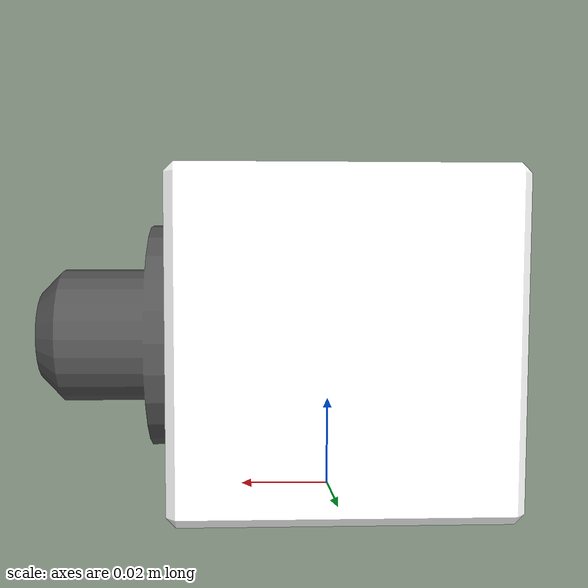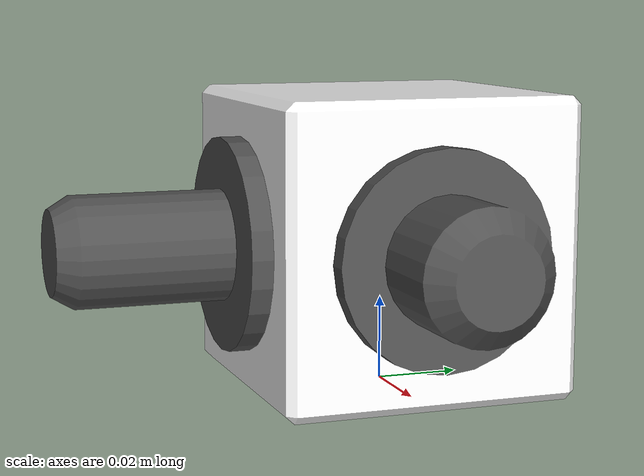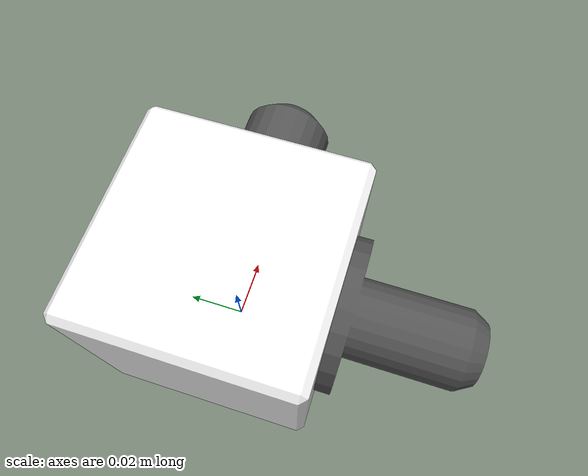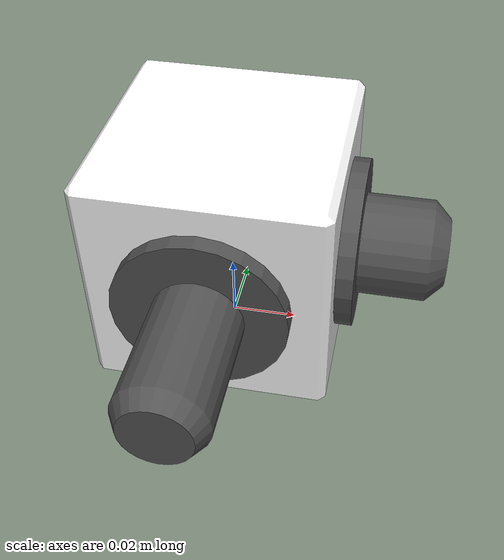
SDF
<?xml version="1.0" ?>
<sdf version="1.6">
  <model name="regulator">
    <static>false</static>
    <allow_auto_disable>false</allow_auto_disable>

    <link name="regulator_link">
      <inertial>
        <pose>0 0 0.035 0 0 0</pose>
        <mass>0.93</mass>
        <inertia>
          <ixx>0.00076</ixx>
          <ixy>0</ixy>
          <ixz>0</ixz>
          <iyy>0.00076</iyy>
          <iyz>0</iyz>
          <izz>0.00076</izz>
        </inertia>
      </inertial>

      <visual name="base">
        <geometry>
          <mesh>
            <uri>model://regulator/meshes/regulator_base.stl</uri>
          </mesh>
        </geometry>
        <material>
          <ambient>1.0 1.0 1.0 1.0</ambient>
          <diffuse>1.0 1.0 1.0 1.0</diffuse>
        </material>
      </visual>

      <visual name="short_peg">
        <geometry>
          <mesh>
            <uri>model://regulator/meshes/regulator_short_peg.stl</uri>
          </mesh>
        </geometry>
        <material>
          <ambient>0.318 0.318 0.318 1.0</ambient>
          <diffuse>0.318 0.318 0.318 1.0</diffuse>
        </material>
      </visual>

      <visual name="long_peg">
        <geometry>
          <mesh>
            <uri>model://regulator/meshes/regulator_long_peg.stl</uri>
          </mesh>
        </geometry>
        <material>
          <ambient>0.318 0.318 0.318 1.0</ambient>
          <diffuse>0.318 0.318 0.318 1.0</diffuse>
        </material>
      </visual>

      <collision name="collision">
        <geometry>
          <mesh>
            <uri>model://regulator/meshes/regulator_collision.stl</uri>
          </mesh>
        </geometry>
        <max_contacts>20</max_contacts>
        <surface>
          <contact>
            <ode>
              <max_vel>0.0</max_vel>
              <min_depth>0.1</min_depth>
            </ode>
          </contact>
          <friction>
            <ode>
              <mu>1000</mu>
              <mu2>1000</mu2>
            </ode>
          </friction>
        </surface>
      </collision>
    </link>
  </model>
</sdf>
